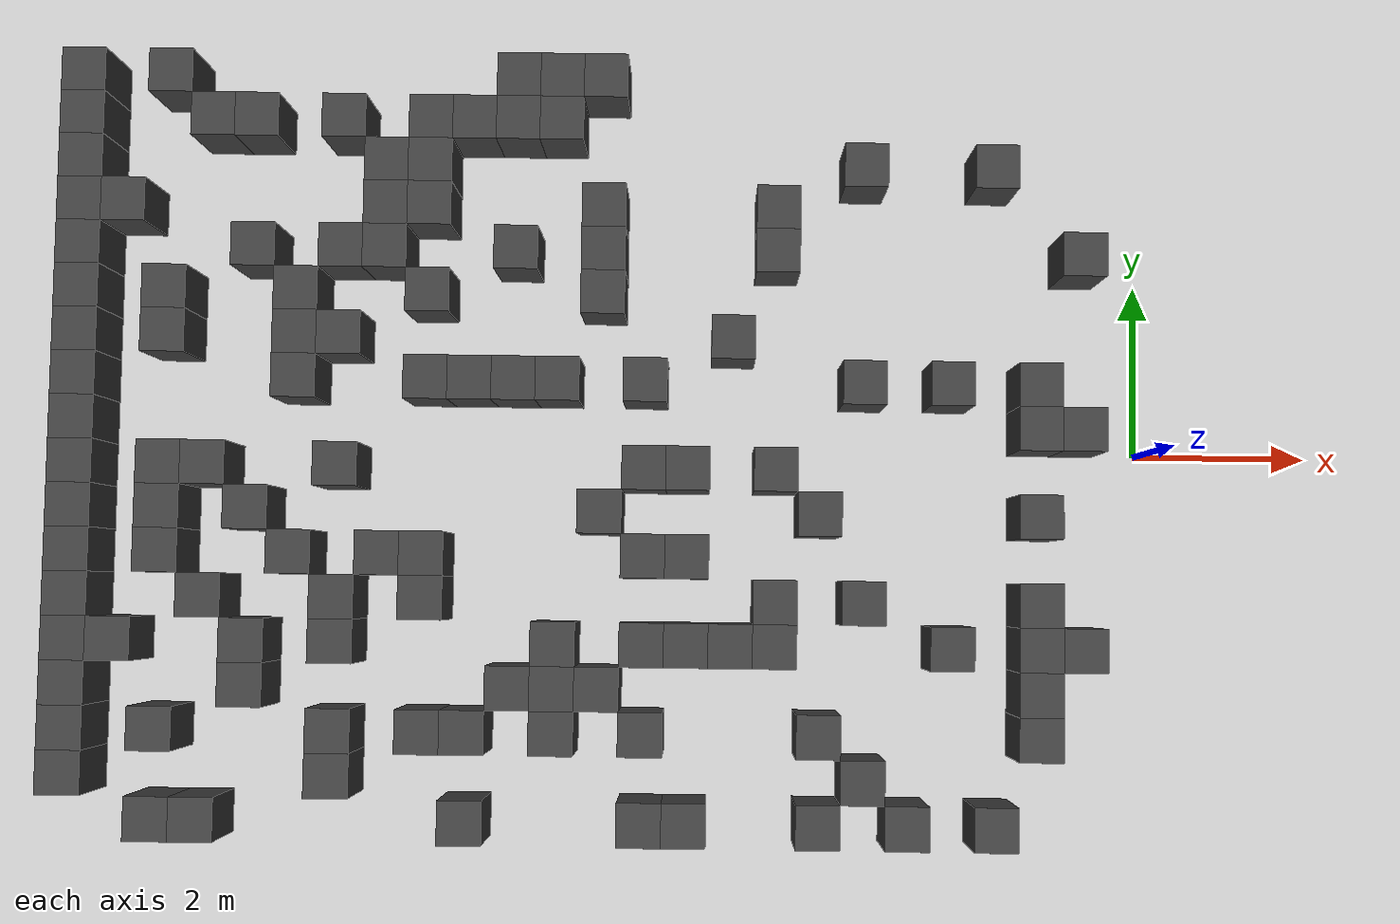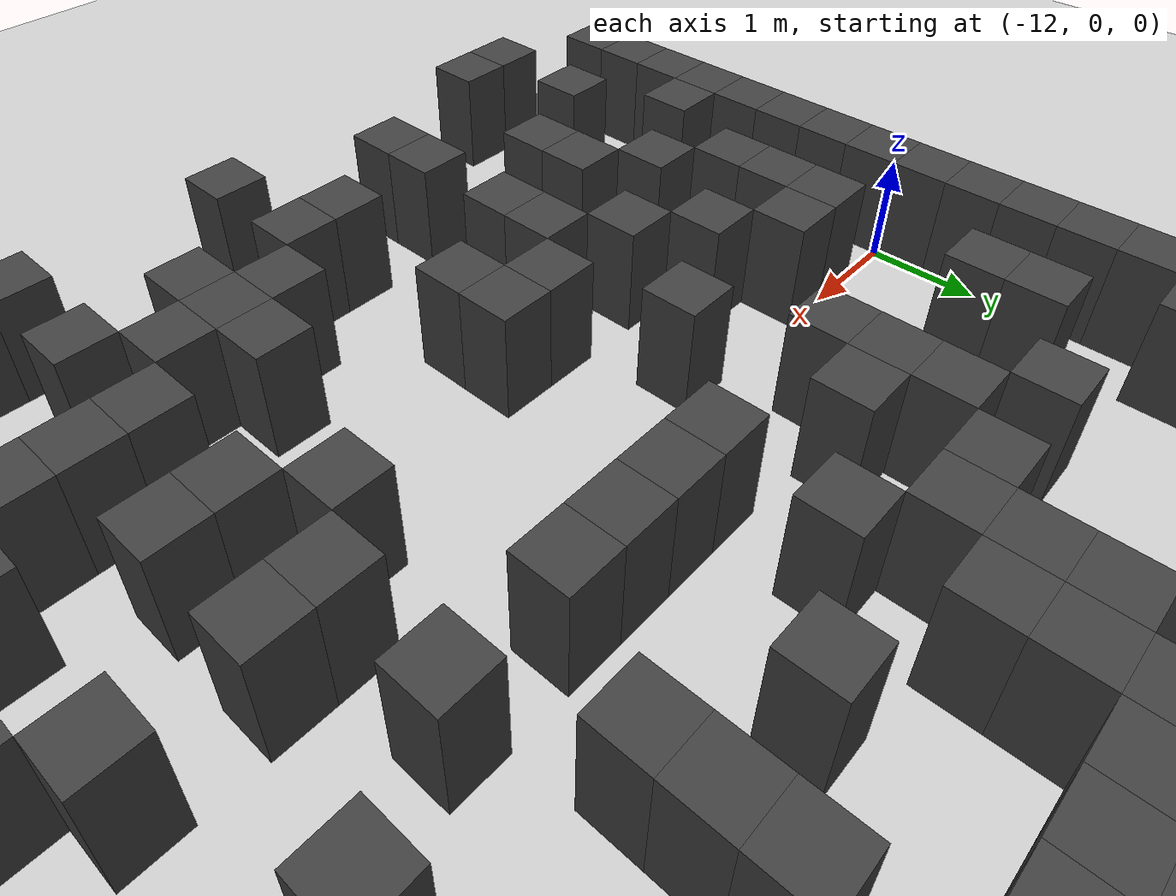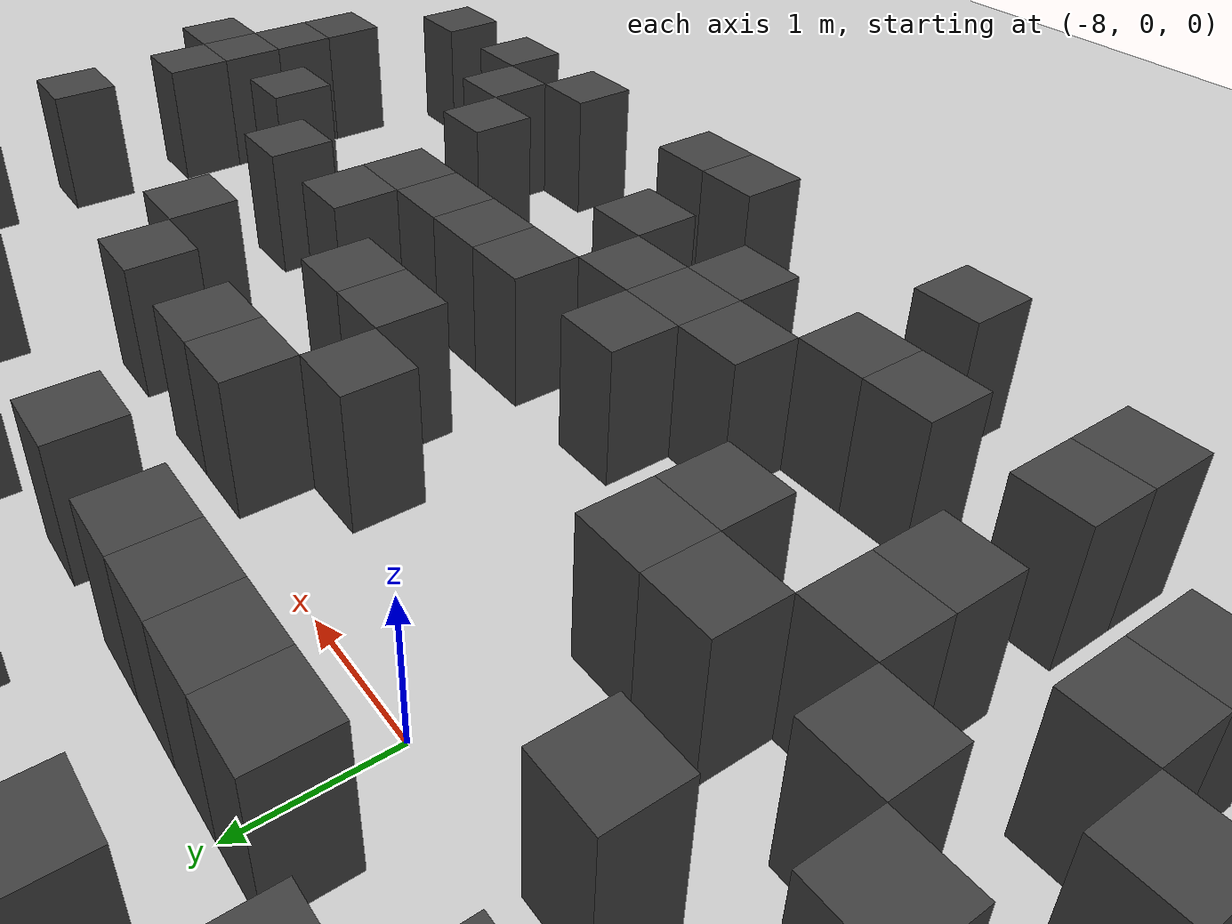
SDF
<sdf version="1.7">
 <world name="map_4752">
  <model name="ground_plane">
   <static>true</static>
   <link name="link">
    <collision name="collision">
     <geometry><plane><normal>0 0 1</normal><size>200 200</size></plane></geometry>
    </collision>
    <visual name="visual">
     <geometry><plane><normal>0 0 1</normal><size>200 200</size></plane></geometry>
     <material><ambient>0.8 0.8 0.8 1</ambient><diffuse>0.8 0.8 0.8 1</diffuse></material>
    </visual>
   </link>
  </model>
  <model name="maze_environment">
   <static>true</static>
   <link name="wall_240">
    <pose>-12.250 4.250 0.500 0 0 0</pose>
    <collision name="col"><geometry><box><size>0.5 0.5 1.0</size></box></geometry></collision>
    <visual name="vis">
     <geometry><box><size>0.5 0.5 1.0</size></box></geometry>
     <material><ambient>0.15 0.15 0.15 1</ambient><diffuse>0.25 0.25 0.25 1</diffuse></material>
    </visual>
   </link>
   <link name="wall_241">
    <pose>-11.250 4.250 0.500 0 0 0</pose>
    <collision name="col"><geometry><box><size>0.5 0.5 1.0</size></box></geometry></collision>
    <visual name="vis">
     <geometry><box><size>0.5 0.5 1.0</size></box></geometry>
     <material><ambient>0.15 0.15 0.15 1</ambient><diffuse>0.25 0.25 0.25 1</diffuse></material>
    </visual>
   </link>
   <link name="wall_242">
    <pose>-7.250 4.250 0.500 0 0 0</pose>
    <collision name="col"><geometry><box><size>0.5 0.5 1.0</size></box></geometry></collision>
    <visual name="vis">
     <geometry><box><size>0.5 0.5 1.0</size></box></geometry>
     <material><ambient>0.15 0.15 0.15 1</ambient><diffuse>0.25 0.25 0.25 1</diffuse></material>
    </visual>
   </link>
   <link name="wall_243">
    <pose>-6.750 4.250 0.500 0 0 0</pose>
    <collision name="col"><geometry><box><size>0.5 0.5 1.0</size></box></geometry></collision>
    <visual name="vis">
     <geometry><box><size>0.5 0.5 1.0</size></box></geometry>
     <material><ambient>0.15 0.15 0.15 1</ambient><diffuse>0.25 0.25 0.25 1</diffuse></material>
    </visual>
   </link>
   <link name="wall_244">
    <pose>-6.250 4.250 0.500 0 0 0</pose>
    <collision name="col"><geometry><box><size>0.5 0.5 1.0</size></box></geometry></collision>
    <visual name="vis">
     <geometry><box><size>0.5 0.5 1.0</size></box></geometry>
     <material><ambient>0.15 0.15 0.15 1</ambient><diffuse>0.25 0.25 0.25 1</diffuse></material>
    </visual>
   </link>
   <link name="wall_249">
    <pose>-12.250 3.750 0.500 0 0 0</pose>
    <collision name="col"><geometry><box><size>0.5 0.5 1.0</size></box></geometry></collision>
    <visual name="vis">
     <geometry><box><size>0.5 0.5 1.0</size></box></geometry>
     <material><ambient>0.15 0.15 0.15 1</ambient><diffuse>0.25 0.25 0.25 1</diffuse></material>
    </visual>
   </link>
   <link name="wall_250">
    <pose>-10.750 3.750 0.500 0 0 0</pose>
    <collision name="col"><geometry><box><size>0.5 0.5 1.0</size></box></geometry></collision>
    <visual name="vis">
     <geometry><box><size>0.5 0.5 1.0</size></box></geometry>
     <material><ambient>0.15 0.15 0.15 1</ambient><diffuse>0.25 0.25 0.25 1</diffuse></material>
    </visual>
   </link>
   <link name="wall_251">
    <pose>-10.250 3.750 0.500 0 0 0</pose>
    <collision name="col"><geometry><box><size>0.5 0.5 1.0</size></box></geometry></collision>
    <visual name="vis">
     <geometry><box><size>0.5 0.5 1.0</size></box></geometry>
     <material><ambient>0.15 0.15 0.15 1</ambient><diffuse>0.25 0.25 0.25 1</diffuse></material>
    </visual>
   </link>
   <link name="wall_252">
    <pose>-9.250 3.750 0.500 0 0 0</pose>
    <collision name="col"><geometry><box><size>0.5 0.5 1.0</size></box></geometry></collision>
    <visual name="vis">
     <geometry><box><size>0.5 0.5 1.0</size></box></geometry>
     <material><ambient>0.15 0.15 0.15 1</ambient><diffuse>0.25 0.25 0.25 1</diffuse></material>
    </visual>
   </link>
   <link name="wall_253">
    <pose>-8.250 3.750 0.500 0 0 0</pose>
    <collision name="col"><geometry><box><size>0.5 0.5 1.0</size></box></geometry></collision>
    <visual name="vis">
     <geometry><box><size>0.5 0.5 1.0</size></box></geometry>
     <material><ambient>0.15 0.15 0.15 1</ambient><diffuse>0.25 0.25 0.25 1</diffuse></material>
    </visual>
   </link>
   <link name="wall_254">
    <pose>-7.750 3.750 0.500 0 0 0</pose>
    <collision name="col"><geometry><box><size>0.5 0.5 1.0</size></box></geometry></collision>
    <visual name="vis">
     <geometry><box><size>0.5 0.5 1.0</size></box></geometry>
     <material><ambient>0.15 0.15 0.15 1</ambient><diffuse>0.25 0.25 0.25 1</diffuse></material>
    </visual>
   </link>
   <link name="wall_255">
    <pose>-7.250 3.750 0.500 0 0 0</pose>
    <collision name="col"><geometry><box><size>0.5 0.5 1.0</size></box></geometry></collision>
    <visual name="vis">
     <geometry><box><size>0.5 0.5 1.0</size></box></geometry>
     <material><ambient>0.15 0.15 0.15 1</ambient><diffuse>0.25 0.25 0.25 1</diffuse></material>
    </visual>
   </link>
   <link name="wall_256">
    <pose>-6.750 3.750 0.500 0 0 0</pose>
    <collision name="col"><geometry><box><size>0.5 0.5 1.0</size></box></geometry></collision>
    <visual name="vis">
     <geometry><box><size>0.5 0.5 1.0</size></box></geometry>
     <material><ambient>0.15 0.15 0.15 1</ambient><diffuse>0.25 0.25 0.25 1</diffuse></material>
    </visual>
   </link>
   <link name="wall_267">
    <pose>-12.250 3.250 0.500 0 0 0</pose>
    <collision name="col"><geometry><box><size>0.5 0.5 1.0</size></box></geometry></collision>
    <visual name="vis">
     <geometry><box><size>0.5 0.5 1.0</size></box></geometry>
     <material><ambient>0.15 0.15 0.15 1</ambient><diffuse>0.25 0.25 0.25 1</diffuse></material>
    </visual>
   </link>
   <link name="wall_268">
    <pose>-8.750 3.250 0.500 0 0 0</pose>
    <collision name="col"><geometry><box><size>0.5 0.5 1.0</size></box></geometry></collision>
    <visual name="vis">
     <geometry><box><size>0.5 0.5 1.0</size></box></geometry>
     <material><ambient>0.15 0.15 0.15 1</ambient><diffuse>0.25 0.25 0.25 1</diffuse></material>
    </visual>
   </link>
   <link name="wall_269">
    <pose>-8.250 3.250 0.500 0 0 0</pose>
    <collision name="col"><geometry><box><size>0.5 0.5 1.0</size></box></geometry></collision>
    <visual name="vis">
     <geometry><box><size>0.5 0.5 1.0</size></box></geometry>
     <material><ambient>0.15 0.15 0.15 1</ambient><diffuse>0.25 0.25 0.25 1</diffuse></material>
    </visual>
   </link>
   <link name="wall_270">
    <pose>-3.250 3.250 0.500 0 0 0</pose>
    <collision name="col"><geometry><box><size>0.5 0.5 1.0</size></box></geometry></collision>
    <visual name="vis">
     <geometry><box><size>0.5 0.5 1.0</size></box></geometry>
     <material><ambient>0.15 0.15 0.15 1</ambient><diffuse>0.25 0.25 0.25 1</diffuse></material>
    </visual>
   </link>
   <link name="wall_271">
    <pose>-1.750 3.250 0.500 0 0 0</pose>
    <collision name="col"><geometry><box><size>0.5 0.5 1.0</size></box></geometry></collision>
    <visual name="vis">
     <geometry><box><size>0.5 0.5 1.0</size></box></geometry>
     <material><ambient>0.15 0.15 0.15 1</ambient><diffuse>0.25 0.25 0.25 1</diffuse></material>
    </visual>
   </link>
   <link name="wall_280">
    <pose>-12.250 2.750 0.500 0 0 0</pose>
    <collision name="col"><geometry><box><size>0.5 0.5 1.0</size></box></geometry></collision>
    <visual name="vis">
     <geometry><box><size>0.5 0.5 1.0</size></box></geometry>
     <material><ambient>0.15 0.15 0.15 1</ambient><diffuse>0.25 0.25 0.25 1</diffuse></material>
    </visual>
   </link>
   <link name="wall_281">
    <pose>-11.750 2.750 0.500 0 0 0</pose>
    <collision name="col"><geometry><box><size>0.5 0.5 1.0</size></box></geometry></collision>
    <visual name="vis">
     <geometry><box><size>0.5 0.5 1.0</size></box></geometry>
     <material><ambient>0.15 0.15 0.15 1</ambient><diffuse>0.25 0.25 0.25 1</diffuse></material>
    </visual>
   </link>
   <link name="wall_282">
    <pose>-8.750 2.750 0.500 0 0 0</pose>
    <collision name="col"><geometry><box><size>0.5 0.5 1.0</size></box></geometry></collision>
    <visual name="vis">
     <geometry><box><size>0.5 0.5 1.0</size></box></geometry>
     <material><ambient>0.15 0.15 0.15 1</ambient><diffuse>0.25 0.25 0.25 1</diffuse></material>
    </visual>
   </link>
   <link name="wall_283">
    <pose>-8.250 2.750 0.500 0 0 0</pose>
    <collision name="col"><geometry><box><size>0.5 0.5 1.0</size></box></geometry></collision>
    <visual name="vis">
     <geometry><box><size>0.5 0.5 1.0</size></box></geometry>
     <material><ambient>0.15 0.15 0.15 1</ambient><diffuse>0.25 0.25 0.25 1</diffuse></material>
    </visual>
   </link>
   <link name="wall_284">
    <pose>-6.250 2.750 0.500 0 0 0</pose>
    <collision name="col"><geometry><box><size>0.5 0.5 1.0</size></box></geometry></collision>
    <visual name="vis">
     <geometry><box><size>0.5 0.5 1.0</size></box></geometry>
     <material><ambient>0.15 0.15 0.15 1</ambient><diffuse>0.25 0.25 0.25 1</diffuse></material>
    </visual>
   </link>
   <link name="wall_285">
    <pose>-4.250 2.750 0.500 0 0 0</pose>
    <collision name="col"><geometry><box><size>0.5 0.5 1.0</size></box></geometry></collision>
    <visual name="vis">
     <geometry><box><size>0.5 0.5 1.0</size></box></geometry>
     <material><ambient>0.15 0.15 0.15 1</ambient><diffuse>0.25 0.25 0.25 1</diffuse></material>
    </visual>
   </link>
   <link name="wall_288">
    <pose>-12.250 2.250 0.500 0 0 0</pose>
    <collision name="col"><geometry><box><size>0.5 0.5 1.0</size></box></geometry></collision>
    <visual name="vis">
     <geometry><box><size>0.5 0.5 1.0</size></box></geometry>
     <material><ambient>0.15 0.15 0.15 1</ambient><diffuse>0.25 0.25 0.25 1</diffuse></material>
    </visual>
   </link>
   <link name="wall_289">
    <pose>-10.250 2.250 0.500 0 0 0</pose>
    <collision name="col"><geometry><box><size>0.5 0.5 1.0</size></box></geometry></collision>
    <visual name="vis">
     <geometry><box><size>0.5 0.5 1.0</size></box></geometry>
     <material><ambient>0.15 0.15 0.15 1</ambient><diffuse>0.25 0.25 0.25 1</diffuse></material>
    </visual>
   </link>
   <link name="wall_290">
    <pose>-9.250 2.250 0.500 0 0 0</pose>
    <collision name="col"><geometry><box><size>0.5 0.5 1.0</size></box></geometry></collision>
    <visual name="vis">
     <geometry><box><size>0.5 0.5 1.0</size></box></geometry>
     <material><ambient>0.15 0.15 0.15 1</ambient><diffuse>0.25 0.25 0.25 1</diffuse></material>
    </visual>
   </link>
   <link name="wall_291">
    <pose>-8.750 2.250 0.500 0 0 0</pose>
    <collision name="col"><geometry><box><size>0.5 0.5 1.0</size></box></geometry></collision>
    <visual name="vis">
     <geometry><box><size>0.5 0.5 1.0</size></box></geometry>
     <material><ambient>0.15 0.15 0.15 1</ambient><diffuse>0.25 0.25 0.25 1</diffuse></material>
    </visual>
   </link>
   <link name="wall_292">
    <pose>-7.250 2.250 0.500 0 0 0</pose>
    <collision name="col"><geometry><box><size>0.5 0.5 1.0</size></box></geometry></collision>
    <visual name="vis">
     <geometry><box><size>0.5 0.5 1.0</size></box></geometry>
     <material><ambient>0.15 0.15 0.15 1</ambient><diffuse>0.25 0.25 0.25 1</diffuse></material>
    </visual>
   </link>
   <link name="wall_293">
    <pose>-6.250 2.250 0.500 0 0 0</pose>
    <collision name="col"><geometry><box><size>0.5 0.5 1.0</size></box></geometry></collision>
    <visual name="vis">
     <geometry><box><size>0.5 0.5 1.0</size></box></geometry>
     <material><ambient>0.15 0.15 0.15 1</ambient><diffuse>0.25 0.25 0.25 1</diffuse></material>
    </visual>
   </link>
   <link name="wall_294">
    <pose>-4.250 2.250 0.500 0 0 0</pose>
    <collision name="col"><geometry><box><size>0.5 0.5 1.0</size></box></geometry></collision>
    <visual name="vis">
     <geometry><box><size>0.5 0.5 1.0</size></box></geometry>
     <material><ambient>0.15 0.15 0.15 1</ambient><diffuse>0.25 0.25 0.25 1</diffuse></material>
    </visual>
   </link>
   <link name="wall_295">
    <pose>-0.750 2.250 0.500 0 0 0</pose>
    <collision name="col"><geometry><box><size>0.5 0.5 1.0</size></box></geometry></collision>
    <visual name="vis">
     <geometry><box><size>0.5 0.5 1.0</size></box></geometry>
     <material><ambient>0.15 0.15 0.15 1</ambient><diffuse>0.25 0.25 0.25 1</diffuse></material>
    </visual>
   </link>
   <link name="wall_303">
    <pose>-12.250 1.750 0.500 0 0 0</pose>
    <collision name="col"><geometry><box><size>0.5 0.5 1.0</size></box></geometry></collision>
    <visual name="vis">
     <geometry><box><size>0.5 0.5 1.0</size></box></geometry>
     <material><ambient>0.15 0.15 0.15 1</ambient><diffuse>0.25 0.25 0.25 1</diffuse></material>
    </visual>
   </link>
   <link name="wall_304">
    <pose>-11.250 1.750 0.500 0 0 0</pose>
    <collision name="col"><geometry><box><size>0.5 0.5 1.0</size></box></geometry></collision>
    <visual name="vis">
     <geometry><box><size>0.5 0.5 1.0</size></box></geometry>
     <material><ambient>0.15 0.15 0.15 1</ambient><diffuse>0.25 0.25 0.25 1</diffuse></material>
    </visual>
   </link>
   <link name="wall_305">
    <pose>-9.750 1.750 0.500 0 0 0</pose>
    <collision name="col"><geometry><box><size>0.5 0.5 1.0</size></box></geometry></collision>
    <visual name="vis">
     <geometry><box><size>0.5 0.5 1.0</size></box></geometry>
     <material><ambient>0.15 0.15 0.15 1</ambient><diffuse>0.25 0.25 0.25 1</diffuse></material>
    </visual>
   </link>
   <link name="wall_306">
    <pose>-8.250 1.750 0.500 0 0 0</pose>
    <collision name="col"><geometry><box><size>0.5 0.5 1.0</size></box></geometry></collision>
    <visual name="vis">
     <geometry><box><size>0.5 0.5 1.0</size></box></geometry>
     <material><ambient>0.15 0.15 0.15 1</ambient><diffuse>0.25 0.25 0.25 1</diffuse></material>
    </visual>
   </link>
   <link name="wall_307">
    <pose>-6.250 1.750 0.500 0 0 0</pose>
    <collision name="col"><geometry><box><size>0.5 0.5 1.0</size></box></geometry></collision>
    <visual name="vis">
     <geometry><box><size>0.5 0.5 1.0</size></box></geometry>
     <material><ambient>0.15 0.15 0.15 1</ambient><diffuse>0.25 0.25 0.25 1</diffuse></material>
    </visual>
   </link>
   <link name="wall_315">
    <pose>-12.250 1.250 0.500 0 0 0</pose>
    <collision name="col"><geometry><box><size>0.5 0.5 1.0</size></box></geometry></collision>
    <visual name="vis">
     <geometry><box><size>0.5 0.5 1.0</size></box></geometry>
     <material><ambient>0.15 0.15 0.15 1</ambient><diffuse>0.25 0.25 0.25 1</diffuse></material>
    </visual>
   </link>
   <link name="wall_316">
    <pose>-11.250 1.250 0.500 0 0 0</pose>
    <collision name="col"><geometry><box><size>0.5 0.5 1.0</size></box></geometry></collision>
    <visual name="vis">
     <geometry><box><size>0.5 0.5 1.0</size></box></geometry>
     <material><ambient>0.15 0.15 0.15 1</ambient><diffuse>0.25 0.25 0.25 1</diffuse></material>
    </visual>
   </link>
   <link name="wall_317">
    <pose>-9.750 1.250 0.500 0 0 0</pose>
    <collision name="col"><geometry><box><size>0.5 0.5 1.0</size></box></geometry></collision>
    <visual name="vis">
     <geometry><box><size>0.5 0.5 1.0</size></box></geometry>
     <material><ambient>0.15 0.15 0.15 1</ambient><diffuse>0.25 0.25 0.25 1</diffuse></material>
    </visual>
   </link>
   <link name="wall_318">
    <pose>-9.250 1.250 0.500 0 0 0</pose>
    <collision name="col"><geometry><box><size>0.5 0.5 1.0</size></box></geometry></collision>
    <visual name="vis">
     <geometry><box><size>0.5 0.5 1.0</size></box></geometry>
     <material><ambient>0.15 0.15 0.15 1</ambient><diffuse>0.25 0.25 0.25 1</diffuse></material>
    </visual>
   </link>
   <link name="wall_319">
    <pose>-4.750 1.250 0.500 0 0 0</pose>
    <collision name="col"><geometry><box><size>0.5 0.5 1.0</size></box></geometry></collision>
    <visual name="vis">
     <geometry><box><size>0.5 0.5 1.0</size></box></geometry>
     <material><ambient>0.15 0.15 0.15 1</ambient><diffuse>0.25 0.25 0.25 1</diffuse></material>
    </visual>
   </link>
   <link name="wall_324">
    <pose>-12.250 0.750 0.500 0 0 0</pose>
    <collision name="col"><geometry><box><size>0.5 0.5 1.0</size></box></geometry></collision>
    <visual name="vis">
     <geometry><box><size>0.5 0.5 1.0</size></box></geometry>
     <material><ambient>0.15 0.15 0.15 1</ambient><diffuse>0.25 0.25 0.25 1</diffuse></material>
    </visual>
   </link>
   <link name="wall_325">
    <pose>-9.750 0.750 0.500 0 0 0</pose>
    <collision name="col"><geometry><box><size>0.5 0.5 1.0</size></box></geometry></collision>
    <visual name="vis">
     <geometry><box><size>0.5 0.5 1.0</size></box></geometry>
     <material><ambient>0.15 0.15 0.15 1</ambient><diffuse>0.25 0.25 0.25 1</diffuse></material>
    </visual>
   </link>
   <link name="wall_326">
    <pose>-8.250 0.750 0.500 0 0 0</pose>
    <collision name="col"><geometry><box><size>0.5 0.5 1.0</size></box></geometry></collision>
    <visual name="vis">
     <geometry><box><size>0.5 0.5 1.0</size></box></geometry>
     <material><ambient>0.15 0.15 0.15 1</ambient><diffuse>0.25 0.25 0.25 1</diffuse></material>
    </visual>
   </link>
   <link name="wall_327">
    <pose>-7.750 0.750 0.500 0 0 0</pose>
    <collision name="col"><geometry><box><size>0.5 0.5 1.0</size></box></geometry></collision>
    <visual name="vis">
     <geometry><box><size>0.5 0.5 1.0</size></box></geometry>
     <material><ambient>0.15 0.15 0.15 1</ambient><diffuse>0.25 0.25 0.25 1</diffuse></material>
    </visual>
   </link>
   <link name="wall_328">
    <pose>-7.250 0.750 0.500 0 0 0</pose>
    <collision name="col"><geometry><box><size>0.5 0.5 1.0</size></box></geometry></collision>
    <visual name="vis">
     <geometry><box><size>0.5 0.5 1.0</size></box></geometry>
     <material><ambient>0.15 0.15 0.15 1</ambient><diffuse>0.25 0.25 0.25 1</diffuse></material>
    </visual>
   </link>
   <link name="wall_329">
    <pose>-6.750 0.750 0.500 0 0 0</pose>
    <collision name="col"><geometry><box><size>0.5 0.5 1.0</size></box></geometry></collision>
    <visual name="vis">
     <geometry><box><size>0.5 0.5 1.0</size></box></geometry>
     <material><ambient>0.15 0.15 0.15 1</ambient><diffuse>0.25 0.25 0.25 1</diffuse></material>
    </visual>
   </link>
   <link name="wall_330">
    <pose>-5.750 0.750 0.500 0 0 0</pose>
    <collision name="col"><geometry><box><size>0.5 0.5 1.0</size></box></geometry></collision>
    <visual name="vis">
     <geometry><box><size>0.5 0.5 1.0</size></box></geometry>
     <material><ambient>0.15 0.15 0.15 1</ambient><diffuse>0.25 0.25 0.25 1</diffuse></material>
    </visual>
   </link>
   <link name="wall_331">
    <pose>-3.250 0.750 0.500 0 0 0</pose>
    <collision name="col"><geometry><box><size>0.5 0.5 1.0</size></box></geometry></collision>
    <visual name="vis">
     <geometry><box><size>0.5 0.5 1.0</size></box></geometry>
     <material><ambient>0.15 0.15 0.15 1</ambient><diffuse>0.25 0.25 0.25 1</diffuse></material>
    </visual>
   </link>
   <link name="wall_332">
    <pose>-2.250 0.750 0.500 0 0 0</pose>
    <collision name="col"><geometry><box><size>0.5 0.5 1.0</size></box></geometry></collision>
    <visual name="vis">
     <geometry><box><size>0.5 0.5 1.0</size></box></geometry>
     <material><ambient>0.15 0.15 0.15 1</ambient><diffuse>0.25 0.25 0.25 1</diffuse></material>
    </visual>
   </link>
   <link name="wall_333">
    <pose>-1.250 0.750 0.500 0 0 0</pose>
    <collision name="col"><geometry><box><size>0.5 0.5 1.0</size></box></geometry></collision>
    <visual name="vis">
     <geometry><box><size>0.5 0.5 1.0</size></box></geometry>
     <material><ambient>0.15 0.15 0.15 1</ambient><diffuse>0.25 0.25 0.25 1</diffuse></material>
    </visual>
   </link>
   <link name="wall_340">
    <pose>-12.250 0.250 0.500 0 0 0</pose>
    <collision name="col"><geometry><box><size>0.5 0.5 1.0</size></box></geometry></collision>
    <visual name="vis">
     <geometry><box><size>0.5 0.5 1.0</size></box></geometry>
     <material><ambient>0.15 0.15 0.15 1</ambient><diffuse>0.25 0.25 0.25 1</diffuse></material>
    </visual>
   </link>
   <link name="wall_341">
    <pose>-1.250 0.250 0.500 0 0 0</pose>
    <collision name="col"><geometry><box><size>0.5 0.5 1.0</size></box></geometry></collision>
    <visual name="vis">
     <geometry><box><size>0.5 0.5 1.0</size></box></geometry>
     <material><ambient>0.15 0.15 0.15 1</ambient><diffuse>0.25 0.25 0.25 1</diffuse></material>
    </visual>
   </link>
   <link name="wall_342">
    <pose>-0.750 0.250 0.500 0 0 0</pose>
    <collision name="col"><geometry><box><size>0.5 0.5 1.0</size></box></geometry></collision>
    <visual name="vis">
     <geometry><box><size>0.5 0.5 1.0</size></box></geometry>
     <material><ambient>0.15 0.15 0.15 1</ambient><diffuse>0.25 0.25 0.25 1</diffuse></material>
    </visual>
   </link>
   <link name="wall_348">
    <pose>-12.250 -0.250 0.500 0 0 0</pose>
    <collision name="col"><geometry><box><size>0.5 0.5 1.0</size></box></geometry></collision>
    <visual name="vis">
     <geometry><box><size>0.5 0.5 1.0</size></box></geometry>
     <material><ambient>0.15 0.15 0.15 1</ambient><diffuse>0.25 0.25 0.25 1</diffuse></material>
    </visual>
   </link>
   <link name="wall_349">
    <pose>-11.250 -0.250 0.500 0 0 0</pose>
    <collision name="col"><geometry><box><size>0.5 0.5 1.0</size></box></geometry></collision>
    <visual name="vis">
     <geometry><box><size>0.5 0.5 1.0</size></box></geometry>
     <material><ambient>0.15 0.15 0.15 1</ambient><diffuse>0.25 0.25 0.25 1</diffuse></material>
    </visual>
   </link>
   <link name="wall_350">
    <pose>-10.750 -0.250 0.500 0 0 0</pose>
    <collision name="col"><geometry><box><size>0.5 0.5 1.0</size></box></geometry></collision>
    <visual name="vis">
     <geometry><box><size>0.5 0.5 1.0</size></box></geometry>
     <material><ambient>0.15 0.15 0.15 1</ambient><diffuse>0.25 0.25 0.25 1</diffuse></material>
    </visual>
   </link>
   <link name="wall_351">
    <pose>-9.250 -0.250 0.500 0 0 0</pose>
    <collision name="col"><geometry><box><size>0.5 0.5 1.0</size></box></geometry></collision>
    <visual name="vis">
     <geometry><box><size>0.5 0.5 1.0</size></box></geometry>
     <material><ambient>0.15 0.15 0.15 1</ambient><diffuse>0.25 0.25 0.25 1</diffuse></material>
    </visual>
   </link>
   <link name="wall_352">
    <pose>-5.750 -0.250 0.500 0 0 0</pose>
    <collision name="col"><geometry><box><size>0.5 0.5 1.0</size></box></geometry></collision>
    <visual name="vis">
     <geometry><box><size>0.5 0.5 1.0</size></box></geometry>
     <material><ambient>0.15 0.15 0.15 1</ambient><diffuse>0.25 0.25 0.25 1</diffuse></material>
    </visual>
   </link>
   <link name="wall_353">
    <pose>-5.250 -0.250 0.500 0 0 0</pose>
    <collision name="col"><geometry><box><size>0.5 0.5 1.0</size></box></geometry></collision>
    <visual name="vis">
     <geometry><box><size>0.5 0.5 1.0</size></box></geometry>
     <material><ambient>0.15 0.15 0.15 1</ambient><diffuse>0.25 0.25 0.25 1</diffuse></material>
    </visual>
   </link>
   <link name="wall_354">
    <pose>-4.250 -0.250 0.500 0 0 0</pose>
    <collision name="col"><geometry><box><size>0.5 0.5 1.0</size></box></geometry></collision>
    <visual name="vis">
     <geometry><box><size>0.5 0.5 1.0</size></box></geometry>
     <material><ambient>0.15 0.15 0.15 1</ambient><diffuse>0.25 0.25 0.25 1</diffuse></material>
    </visual>
   </link>
   <link name="wall_363">
    <pose>-12.250 -0.750 0.500 0 0 0</pose>
    <collision name="col"><geometry><box><size>0.5 0.5 1.0</size></box></geometry></collision>
    <visual name="vis">
     <geometry><box><size>0.5 0.5 1.0</size></box></geometry>
     <material><ambient>0.15 0.15 0.15 1</ambient><diffuse>0.25 0.25 0.25 1</diffuse></material>
    </visual>
   </link>
   <link name="wall_364">
    <pose>-11.250 -0.750 0.500 0 0 0</pose>
    <collision name="col"><geometry><box><size>0.5 0.5 1.0</size></box></geometry></collision>
    <visual name="vis">
     <geometry><box><size>0.5 0.5 1.0</size></box></geometry>
     <material><ambient>0.15 0.15 0.15 1</ambient><diffuse>0.25 0.25 0.25 1</diffuse></material>
    </visual>
   </link>
   <link name="wall_365">
    <pose>-10.250 -0.750 0.500 0 0 0</pose>
    <collision name="col"><geometry><box><size>0.5 0.5 1.0</size></box></geometry></collision>
    <visual name="vis">
     <geometry><box><size>0.5 0.5 1.0</size></box></geometry>
     <material><ambient>0.15 0.15 0.15 1</ambient><diffuse>0.25 0.25 0.25 1</diffuse></material>
    </visual>
   </link>
   <link name="wall_366">
    <pose>-6.250 -0.750 0.500 0 0 0</pose>
    <collision name="col"><geometry><box><size>0.5 0.5 1.0</size></box></geometry></collision>
    <visual name="vis">
     <geometry><box><size>0.5 0.5 1.0</size></box></geometry>
     <material><ambient>0.15 0.15 0.15 1</ambient><diffuse>0.25 0.25 0.25 1</diffuse></material>
    </visual>
   </link>
   <link name="wall_367">
    <pose>-3.750 -0.750 0.500 0 0 0</pose>
    <collision name="col"><geometry><box><size>0.5 0.5 1.0</size></box></geometry></collision>
    <visual name="vis">
     <geometry><box><size>0.5 0.5 1.0</size></box></geometry>
     <material><ambient>0.15 0.15 0.15 1</ambient><diffuse>0.25 0.25 0.25 1</diffuse></material>
    </visual>
   </link>
   <link name="wall_368">
    <pose>-1.250 -0.750 0.500 0 0 0</pose>
    <collision name="col"><geometry><box><size>0.5 0.5 1.0</size></box></geometry></collision>
    <visual name="vis">
     <geometry><box><size>0.5 0.5 1.0</size></box></geometry>
     <material><ambient>0.15 0.15 0.15 1</ambient><diffuse>0.25 0.25 0.25 1</diffuse></material>
    </visual>
   </link>
   <link name="wall_380">
    <pose>-12.250 -1.250 0.500 0 0 0</pose>
    <collision name="col"><geometry><box><size>0.5 0.5 1.0</size></box></geometry></collision>
    <visual name="vis">
     <geometry><box><size>0.5 0.5 1.0</size></box></geometry>
     <material><ambient>0.15 0.15 0.15 1</ambient><diffuse>0.25 0.25 0.25 1</diffuse></material>
    </visual>
   </link>
   <link name="wall_381">
    <pose>-11.250 -1.250 0.500 0 0 0</pose>
    <collision name="col"><geometry><box><size>0.5 0.5 1.0</size></box></geometry></collision>
    <visual name="vis">
     <geometry><box><size>0.5 0.5 1.0</size></box></geometry>
     <material><ambient>0.15 0.15 0.15 1</ambient><diffuse>0.25 0.25 0.25 1</diffuse></material>
    </visual>
   </link>
   <link name="wall_382">
    <pose>-9.750 -1.250 0.500 0 0 0</pose>
    <collision name="col"><geometry><box><size>0.5 0.5 1.0</size></box></geometry></collision>
    <visual name="vis">
     <geometry><box><size>0.5 0.5 1.0</size></box></geometry>
     <material><ambient>0.15 0.15 0.15 1</ambient><diffuse>0.25 0.25 0.25 1</diffuse></material>
    </visual>
   </link>
   <link name="wall_383">
    <pose>-8.750 -1.250 0.500 0 0 0</pose>
    <collision name="col"><geometry><box><size>0.5 0.5 1.0</size></box></geometry></collision>
    <visual name="vis">
     <geometry><box><size>0.5 0.5 1.0</size></box></geometry>
     <material><ambient>0.15 0.15 0.15 1</ambient><diffuse>0.25 0.25 0.25 1</diffuse></material>
    </visual>
   </link>
   <link name="wall_384">
    <pose>-8.250 -1.250 0.500 0 0 0</pose>
    <collision name="col"><geometry><box><size>0.5 0.5 1.0</size></box></geometry></collision>
    <visual name="vis">
     <geometry><box><size>0.5 0.5 1.0</size></box></geometry>
     <material><ambient>0.15 0.15 0.15 1</ambient><diffuse>0.25 0.25 0.25 1</diffuse></material>
    </visual>
   </link>
   <link name="wall_385">
    <pose>-5.750 -1.250 0.500 0 0 0</pose>
    <collision name="col"><geometry><box><size>0.5 0.5 1.0</size></box></geometry></collision>
    <visual name="vis">
     <geometry><box><size>0.5 0.5 1.0</size></box></geometry>
     <material><ambient>0.15 0.15 0.15 1</ambient><diffuse>0.25 0.25 0.25 1</diffuse></material>
    </visual>
   </link>
   <link name="wall_386">
    <pose>-5.250 -1.250 0.500 0 0 0</pose>
    <collision name="col"><geometry><box><size>0.5 0.5 1.0</size></box></geometry></collision>
    <visual name="vis">
     <geometry><box><size>0.5 0.5 1.0</size></box></geometry>
     <material><ambient>0.15 0.15 0.15 1</ambient><diffuse>0.25 0.25 0.25 1</diffuse></material>
    </visual>
   </link>
   <link name="wall_393">
    <pose>-12.250 -1.750 0.500 0 0 0</pose>
    <collision name="col"><geometry><box><size>0.5 0.5 1.0</size></box></geometry></collision>
    <visual name="vis">
     <geometry><box><size>0.5 0.5 1.0</size></box></geometry>
     <material><ambient>0.15 0.15 0.15 1</ambient><diffuse>0.25 0.25 0.25 1</diffuse></material>
    </visual>
   </link>
   <link name="wall_394">
    <pose>-10.750 -1.750 0.500 0 0 0</pose>
    <collision name="col"><geometry><box><size>0.5 0.5 1.0</size></box></geometry></collision>
    <visual name="vis">
     <geometry><box><size>0.5 0.5 1.0</size></box></geometry>
     <material><ambient>0.15 0.15 0.15 1</ambient><diffuse>0.25 0.25 0.25 1</diffuse></material>
    </visual>
   </link>
   <link name="wall_395">
    <pose>-9.250 -1.750 0.500 0 0 0</pose>
    <collision name="col"><geometry><box><size>0.5 0.5 1.0</size></box></geometry></collision>
    <visual name="vis">
     <geometry><box><size>0.5 0.5 1.0</size></box></geometry>
     <material><ambient>0.15 0.15 0.15 1</ambient><diffuse>0.25 0.25 0.25 1</diffuse></material>
    </visual>
   </link>
   <link name="wall_396">
    <pose>-8.250 -1.750 0.500 0 0 0</pose>
    <collision name="col"><geometry><box><size>0.5 0.5 1.0</size></box></geometry></collision>
    <visual name="vis">
     <geometry><box><size>0.5 0.5 1.0</size></box></geometry>
     <material><ambient>0.15 0.15 0.15 1</ambient><diffuse>0.25 0.25 0.25 1</diffuse></material>
    </visual>
   </link>
   <link name="wall_397">
    <pose>-4.250 -1.750 0.500 0 0 0</pose>
    <collision name="col"><geometry><box><size>0.5 0.5 1.0</size></box></geometry></collision>
    <visual name="vis">
     <geometry><box><size>0.5 0.5 1.0</size></box></geometry>
     <material><ambient>0.15 0.15 0.15 1</ambient><diffuse>0.25 0.25 0.25 1</diffuse></material>
    </visual>
   </link>
   <link name="wall_398">
    <pose>-3.250 -1.750 0.500 0 0 0</pose>
    <collision name="col"><geometry><box><size>0.5 0.5 1.0</size></box></geometry></collision>
    <visual name="vis">
     <geometry><box><size>0.5 0.5 1.0</size></box></geometry>
     <material><ambient>0.15 0.15 0.15 1</ambient><diffuse>0.25 0.25 0.25 1</diffuse></material>
    </visual>
   </link>
   <link name="wall_399">
    <pose>-1.250 -1.750 0.500 0 0 0</pose>
    <collision name="col"><geometry><box><size>0.5 0.5 1.0</size></box></geometry></collision>
    <visual name="vis">
     <geometry><box><size>0.5 0.5 1.0</size></box></geometry>
     <material><ambient>0.15 0.15 0.15 1</ambient><diffuse>0.25 0.25 0.25 1</diffuse></material>
    </visual>
   </link>
   <link name="wall_409">
    <pose>-12.250 -2.250 0.500 0 0 0</pose>
    <collision name="col"><geometry><box><size>0.5 0.5 1.0</size></box></geometry></collision>
    <visual name="vis">
     <geometry><box><size>0.5 0.5 1.0</size></box></geometry>
     <material><ambient>0.15 0.15 0.15 1</ambient><diffuse>0.25 0.25 0.25 1</diffuse></material>
    </visual>
   </link>
   <link name="wall_410">
    <pose>-11.750 -2.250 0.500 0 0 0</pose>
    <collision name="col"><geometry><box><size>0.5 0.5 1.0</size></box></geometry></collision>
    <visual name="vis">
     <geometry><box><size>0.5 0.5 1.0</size></box></geometry>
     <material><ambient>0.15 0.15 0.15 1</ambient><diffuse>0.25 0.25 0.25 1</diffuse></material>
    </visual>
   </link>
   <link name="wall_411">
    <pose>-10.250 -2.250 0.500 0 0 0</pose>
    <collision name="col"><geometry><box><size>0.5 0.5 1.0</size></box></geometry></collision>
    <visual name="vis">
     <geometry><box><size>0.5 0.5 1.0</size></box></geometry>
     <material><ambient>0.15 0.15 0.15 1</ambient><diffuse>0.25 0.25 0.25 1</diffuse></material>
    </visual>
   </link>
   <link name="wall_412">
    <pose>-9.250 -2.250 0.500 0 0 0</pose>
    <collision name="col"><geometry><box><size>0.5 0.5 1.0</size></box></geometry></collision>
    <visual name="vis">
     <geometry><box><size>0.5 0.5 1.0</size></box></geometry>
     <material><ambient>0.15 0.15 0.15 1</ambient><diffuse>0.25 0.25 0.25 1</diffuse></material>
    </visual>
   </link>
   <link name="wall_413">
    <pose>-6.750 -2.250 0.500 0 0 0</pose>
    <collision name="col"><geometry><box><size>0.5 0.5 1.0</size></box></geometry></collision>
    <visual name="vis">
     <geometry><box><size>0.5 0.5 1.0</size></box></geometry>
     <material><ambient>0.15 0.15 0.15 1</ambient><diffuse>0.25 0.25 0.25 1</diffuse></material>
    </visual>
   </link>
   <link name="wall_414">
    <pose>-5.750 -2.250 0.500 0 0 0</pose>
    <collision name="col"><geometry><box><size>0.5 0.5 1.0</size></box></geometry></collision>
    <visual name="vis">
     <geometry><box><size>0.5 0.5 1.0</size></box></geometry>
     <material><ambient>0.15 0.15 0.15 1</ambient><diffuse>0.25 0.25 0.25 1</diffuse></material>
    </visual>
   </link>
   <link name="wall_415">
    <pose>-5.250 -2.250 0.500 0 0 0</pose>
    <collision name="col"><geometry><box><size>0.5 0.5 1.0</size></box></geometry></collision>
    <visual name="vis">
     <geometry><box><size>0.5 0.5 1.0</size></box></geometry>
     <material><ambient>0.15 0.15 0.15 1</ambient><diffuse>0.25 0.25 0.25 1</diffuse></material>
    </visual>
   </link>
   <link name="wall_416">
    <pose>-4.750 -2.250 0.500 0 0 0</pose>
    <collision name="col"><geometry><box><size>0.5 0.5 1.0</size></box></geometry></collision>
    <visual name="vis">
     <geometry><box><size>0.5 0.5 1.0</size></box></geometry>
     <material><ambient>0.15 0.15 0.15 1</ambient><diffuse>0.25 0.25 0.25 1</diffuse></material>
    </visual>
   </link>
   <link name="wall_417">
    <pose>-4.250 -2.250 0.500 0 0 0</pose>
    <collision name="col"><geometry><box><size>0.5 0.5 1.0</size></box></geometry></collision>
    <visual name="vis">
     <geometry><box><size>0.5 0.5 1.0</size></box></geometry>
     <material><ambient>0.15 0.15 0.15 1</ambient><diffuse>0.25 0.25 0.25 1</diffuse></material>
    </visual>
   </link>
   <link name="wall_418">
    <pose>-2.250 -2.250 0.500 0 0 0</pose>
    <collision name="col"><geometry><box><size>0.5 0.5 1.0</size></box></geometry></collision>
    <visual name="vis">
     <geometry><box><size>0.5 0.5 1.0</size></box></geometry>
     <material><ambient>0.15 0.15 0.15 1</ambient><diffuse>0.25 0.25 0.25 1</diffuse></material>
    </visual>
   </link>
   <link name="wall_419">
    <pose>-1.250 -2.250 0.500 0 0 0</pose>
    <collision name="col"><geometry><box><size>0.5 0.5 1.0</size></box></geometry></collision>
    <visual name="vis">
     <geometry><box><size>0.5 0.5 1.0</size></box></geometry>
     <material><ambient>0.15 0.15 0.15 1</ambient><diffuse>0.25 0.25 0.25 1</diffuse></material>
    </visual>
   </link>
   <link name="wall_420">
    <pose>-0.750 -2.250 0.500 0 0 0</pose>
    <collision name="col"><geometry><box><size>0.5 0.5 1.0</size></box></geometry></collision>
    <visual name="vis">
     <geometry><box><size>0.5 0.5 1.0</size></box></geometry>
     <material><ambient>0.15 0.15 0.15 1</ambient><diffuse>0.25 0.25 0.25 1</diffuse></material>
    </visual>
   </link>
   <link name="wall_426">
    <pose>-12.250 -2.750 0.500 0 0 0</pose>
    <collision name="col"><geometry><box><size>0.5 0.5 1.0</size></box></geometry></collision>
    <visual name="vis">
     <geometry><box><size>0.5 0.5 1.0</size></box></geometry>
     <material><ambient>0.15 0.15 0.15 1</ambient><diffuse>0.25 0.25 0.25 1</diffuse></material>
    </visual>
   </link>
   <link name="wall_427">
    <pose>-10.250 -2.750 0.500 0 0 0</pose>
    <collision name="col"><geometry><box><size>0.5 0.5 1.0</size></box></geometry></collision>
    <visual name="vis">
     <geometry><box><size>0.5 0.5 1.0</size></box></geometry>
     <material><ambient>0.15 0.15 0.15 1</ambient><diffuse>0.25 0.25 0.25 1</diffuse></material>
    </visual>
   </link>
   <link name="wall_428">
    <pose>-7.250 -2.750 0.500 0 0 0</pose>
    <collision name="col"><geometry><box><size>0.5 0.5 1.0</size></box></geometry></collision>
    <visual name="vis">
     <geometry><box><size>0.5 0.5 1.0</size></box></geometry>
     <material><ambient>0.15 0.15 0.15 1</ambient><diffuse>0.25 0.25 0.25 1</diffuse></material>
    </visual>
   </link>
   <link name="wall_429">
    <pose>-6.750 -2.750 0.500 0 0 0</pose>
    <collision name="col"><geometry><box><size>0.5 0.5 1.0</size></box></geometry></collision>
    <visual name="vis">
     <geometry><box><size>0.5 0.5 1.0</size></box></geometry>
     <material><ambient>0.15 0.15 0.15 1</ambient><diffuse>0.25 0.25 0.25 1</diffuse></material>
    </visual>
   </link>
   <link name="wall_430">
    <pose>-6.250 -2.750 0.500 0 0 0</pose>
    <collision name="col"><geometry><box><size>0.5 0.5 1.0</size></box></geometry></collision>
    <visual name="vis">
     <geometry><box><size>0.5 0.5 1.0</size></box></geometry>
     <material><ambient>0.15 0.15 0.15 1</ambient><diffuse>0.25 0.25 0.25 1</diffuse></material>
    </visual>
   </link>
   <link name="wall_431">
    <pose>-1.250 -2.750 0.500 0 0 0</pose>
    <collision name="col"><geometry><box><size>0.5 0.5 1.0</size></box></geometry></collision>
    <visual name="vis">
     <geometry><box><size>0.5 0.5 1.0</size></box></geometry>
     <material><ambient>0.15 0.15 0.15 1</ambient><diffuse>0.25 0.25 0.25 1</diffuse></material>
    </visual>
   </link>
   <link name="wall_439">
    <pose>-12.250 -3.250 0.500 0 0 0</pose>
    <collision name="col"><geometry><box><size>0.5 0.5 1.0</size></box></geometry></collision>
    <visual name="vis">
     <geometry><box><size>0.5 0.5 1.0</size></box></geometry>
     <material><ambient>0.15 0.15 0.15 1</ambient><diffuse>0.25 0.25 0.25 1</diffuse></material>
    </visual>
   </link>
   <link name="wall_440">
    <pose>-11.250 -3.250 0.500 0 0 0</pose>
    <collision name="col"><geometry><box><size>0.5 0.5 1.0</size></box></geometry></collision>
    <visual name="vis">
     <geometry><box><size>0.5 0.5 1.0</size></box></geometry>
     <material><ambient>0.15 0.15 0.15 1</ambient><diffuse>0.25 0.25 0.25 1</diffuse></material>
    </visual>
   </link>
   <link name="wall_441">
    <pose>-9.250 -3.250 0.500 0 0 0</pose>
    <collision name="col"><geometry><box><size>0.5 0.5 1.0</size></box></geometry></collision>
    <visual name="vis">
     <geometry><box><size>0.5 0.5 1.0</size></box></geometry>
     <material><ambient>0.15 0.15 0.15 1</ambient><diffuse>0.25 0.25 0.25 1</diffuse></material>
    </visual>
   </link>
   <link name="wall_442">
    <pose>-8.250 -3.250 0.500 0 0 0</pose>
    <collision name="col"><geometry><box><size>0.5 0.5 1.0</size></box></geometry></collision>
    <visual name="vis">
     <geometry><box><size>0.5 0.5 1.0</size></box></geometry>
     <material><ambient>0.15 0.15 0.15 1</ambient><diffuse>0.25 0.25 0.25 1</diffuse></material>
    </visual>
   </link>
   <link name="wall_443">
    <pose>-7.750 -3.250 0.500 0 0 0</pose>
    <collision name="col"><geometry><box><size>0.5 0.5 1.0</size></box></geometry></collision>
    <visual name="vis">
     <geometry><box><size>0.5 0.5 1.0</size></box></geometry>
     <material><ambient>0.15 0.15 0.15 1</ambient><diffuse>0.25 0.25 0.25 1</diffuse></material>
    </visual>
   </link>
   <link name="wall_444">
    <pose>-6.750 -3.250 0.500 0 0 0</pose>
    <collision name="col"><geometry><box><size>0.5 0.5 1.0</size></box></geometry></collision>
    <visual name="vis">
     <geometry><box><size>0.5 0.5 1.0</size></box></geometry>
     <material><ambient>0.15 0.15 0.15 1</ambient><diffuse>0.25 0.25 0.25 1</diffuse></material>
    </visual>
   </link>
   <link name="wall_445">
    <pose>-5.750 -3.250 0.500 0 0 0</pose>
    <collision name="col"><geometry><box><size>0.5 0.5 1.0</size></box></geometry></collision>
    <visual name="vis">
     <geometry><box><size>0.5 0.5 1.0</size></box></geometry>
     <material><ambient>0.15 0.15 0.15 1</ambient><diffuse>0.25 0.25 0.25 1</diffuse></material>
    </visual>
   </link>
   <link name="wall_446">
    <pose>-3.750 -3.250 0.500 0 0 0</pose>
    <collision name="col"><geometry><box><size>0.5 0.5 1.0</size></box></geometry></collision>
    <visual name="vis">
     <geometry><box><size>0.5 0.5 1.0</size></box></geometry>
     <material><ambient>0.15 0.15 0.15 1</ambient><diffuse>0.25 0.25 0.25 1</diffuse></material>
    </visual>
   </link>
   <link name="wall_447">
    <pose>-1.250 -3.250 0.500 0 0 0</pose>
    <collision name="col"><geometry><box><size>0.5 0.5 1.0</size></box></geometry></collision>
    <visual name="vis">
     <geometry><box><size>0.5 0.5 1.0</size></box></geometry>
     <material><ambient>0.15 0.15 0.15 1</ambient><diffuse>0.25 0.25 0.25 1</diffuse></material>
    </visual>
   </link>
   <link name="wall_452">
    <pose>-12.250 -3.750 0.500 0 0 0</pose>
    <collision name="col"><geometry><box><size>0.5 0.5 1.0</size></box></geometry></collision>
    <visual name="vis">
     <geometry><box><size>0.5 0.5 1.0</size></box></geometry>
     <material><ambient>0.15 0.15 0.15 1</ambient><diffuse>0.25 0.25 0.25 1</diffuse></material>
    </visual>
   </link>
   <link name="wall_453">
    <pose>-9.250 -3.750 0.500 0 0 0</pose>
    <collision name="col"><geometry><box><size>0.5 0.5 1.0</size></box></geometry></collision>
    <visual name="vis">
     <geometry><box><size>0.5 0.5 1.0</size></box></geometry>
     <material><ambient>0.15 0.15 0.15 1</ambient><diffuse>0.25 0.25 0.25 1</diffuse></material>
    </visual>
   </link>
   <link name="wall_454">
    <pose>-3.250 -3.750 0.500 0 0 0</pose>
    <collision name="col"><geometry><box><size>0.5 0.5 1.0</size></box></geometry></collision>
    <visual name="vis">
     <geometry><box><size>0.5 0.5 1.0</size></box></geometry>
     <material><ambient>0.15 0.15 0.15 1</ambient><diffuse>0.25 0.25 0.25 1</diffuse></material>
    </visual>
   </link>
   <link name="wall_463">
    <pose>-11.250 -4.250 0.500 0 0 0</pose>
    <collision name="col"><geometry><box><size>0.5 0.5 1.0</size></box></geometry></collision>
    <visual name="vis">
     <geometry><box><size>0.5 0.5 1.0</size></box></geometry>
     <material><ambient>0.15 0.15 0.15 1</ambient><diffuse>0.25 0.25 0.25 1</diffuse></material>
    </visual>
   </link>
   <link name="wall_464">
    <pose>-10.750 -4.250 0.500 0 0 0</pose>
    <collision name="col"><geometry><box><size>0.5 0.5 1.0</size></box></geometry></collision>
    <visual name="vis">
     <geometry><box><size>0.5 0.5 1.0</size></box></geometry>
     <material><ambient>0.15 0.15 0.15 1</ambient><diffuse>0.25 0.25 0.25 1</diffuse></material>
    </visual>
   </link>
   <link name="wall_465">
    <pose>-7.750 -4.250 0.500 0 0 0</pose>
    <collision name="col"><geometry><box><size>0.5 0.5 1.0</size></box></geometry></collision>
    <visual name="vis">
     <geometry><box><size>0.5 0.5 1.0</size></box></geometry>
     <material><ambient>0.15 0.15 0.15 1</ambient><diffuse>0.25 0.25 0.25 1</diffuse></material>
    </visual>
   </link>
   <link name="wall_466">
    <pose>-5.750 -4.250 0.500 0 0 0</pose>
    <collision name="col"><geometry><box><size>0.5 0.5 1.0</size></box></geometry></collision>
    <visual name="vis">
     <geometry><box><size>0.5 0.5 1.0</size></box></geometry>
     <material><ambient>0.15 0.15 0.15 1</ambient><diffuse>0.25 0.25 0.25 1</diffuse></material>
    </visual>
   </link>
   <link name="wall_467">
    <pose>-5.250 -4.250 0.500 0 0 0</pose>
    <collision name="col"><geometry><box><size>0.5 0.5 1.0</size></box></geometry></collision>
    <visual name="vis">
     <geometry><box><size>0.5 0.5 1.0</size></box></geometry>
     <material><ambient>0.15 0.15 0.15 1</ambient><diffuse>0.25 0.25 0.25 1</diffuse></material>
    </visual>
   </link>
   <link name="wall_468">
    <pose>-3.750 -4.250 0.500 0 0 0</pose>
    <collision name="col"><geometry><box><size>0.5 0.5 1.0</size></box></geometry></collision>
    <visual name="vis">
     <geometry><box><size>0.5 0.5 1.0</size></box></geometry>
     <material><ambient>0.15 0.15 0.15 1</ambient><diffuse>0.25 0.25 0.25 1</diffuse></material>
    </visual>
   </link>
   <link name="wall_469">
    <pose>-2.750 -4.250 0.500 0 0 0</pose>
    <collision name="col"><geometry><box><size>0.5 0.5 1.0</size></box></geometry></collision>
    <visual name="vis">
     <geometry><box><size>0.5 0.5 1.0</size></box></geometry>
     <material><ambient>0.15 0.15 0.15 1</ambient><diffuse>0.25 0.25 0.25 1</diffuse></material>
    </visual>
   </link>
   <link name="wall_470">
    <pose>-1.750 -4.250 0.500 0 0 0</pose>
    <collision name="col"><geometry><box><size>0.5 0.5 1.0</size></box></geometry></collision>
    <visual name="vis">
     <geometry><box><size>0.5 0.5 1.0</size></box></geometry>
     <material><ambient>0.15 0.15 0.15 1</ambient><diffuse>0.25 0.25 0.25 1</diffuse></material>
    </visual>
   </link>
  </model>
 </world>
</sdf>
